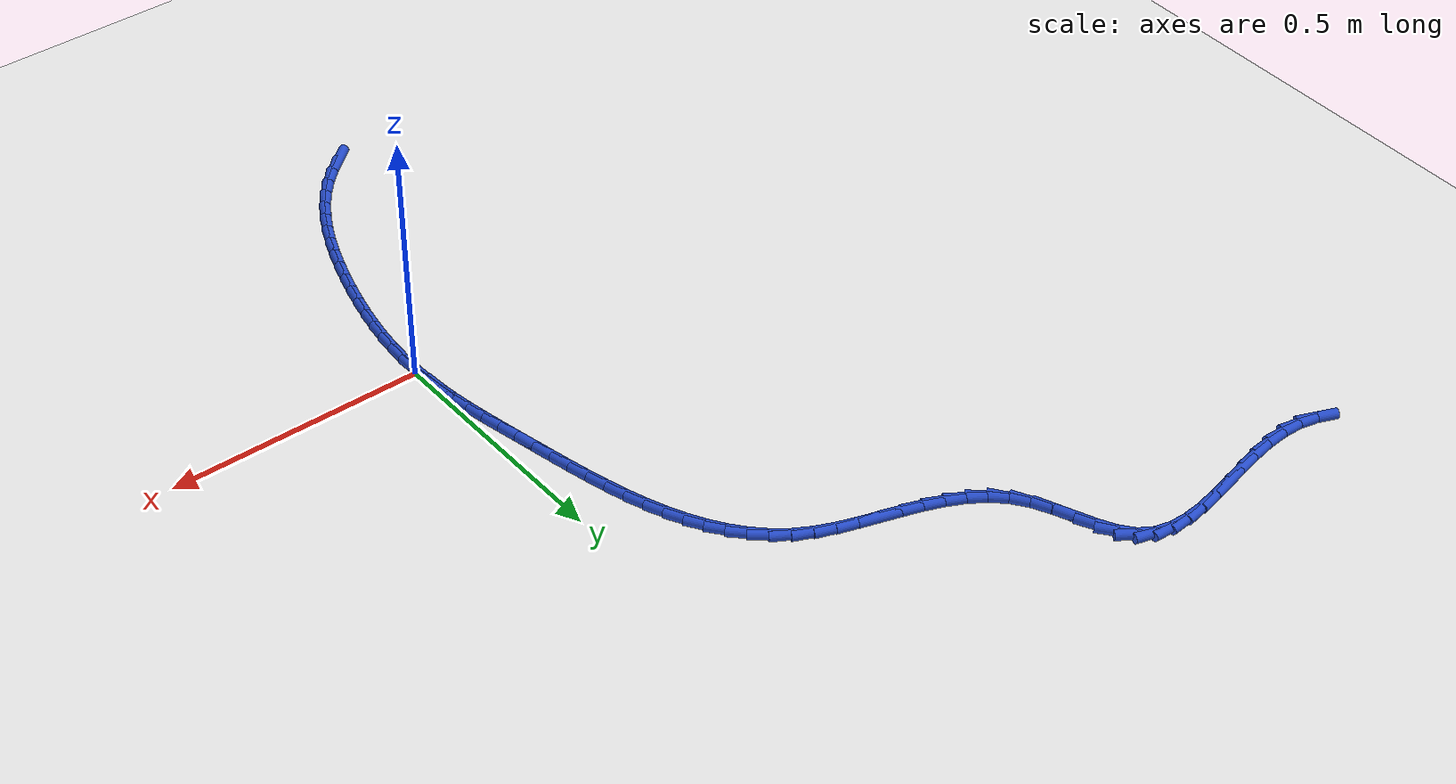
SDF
<sdf version="1.6">
 <world name="default">
  <model name="ground_plane">
   <static>1</static>
   <link name="link">
    <collision name="collision">
     <geometry><plane><normal>0 0 1</normal><size>100 100</size></plane></geometry>
     <surface><friction><ode><mu>100</mu><mu2>50</mu2></ode></friction></surface>
    </collision>
    <visual name="visual">
     <cast_shadows>0</cast_shadows>
     <geometry><plane><normal>0 0 1</normal><size>100 100</size></plane></geometry>
     <material>
      <script><uri>file://media/materials/scripts/gazebo.material</uri><name>Gazebo/WhiteGlow</name></script>
     </material>
    </visual>
   </link>
  </model>
  <model name="line">
   <link name="link_0">
    <pose>-1.734723475976807e-18 5.551115123125783e-17 0.01 0 1.57 -1.5294576837806575</pose>
    <collision name="collision">
     <geometry><cylinder><radius>0.01</radius><length>0.08</length></cylinder></geometry>
    </collision>
    <visual name="visual">
     <material>
      <script><name>Gazebo/Blue</name><uri>file://media/materials/scripts/gazebo.material</uri></script>
     </material>
     <geometry><cylinder><radius>0.01</radius><length>0.08</length></cylinder></geometry>
    </visual>
   </link>
   <link name="link_1">
    <pose>-0.0015377222670649787 0.03717698806352743 0.01 0 1.57 -1.484491954047659</pose>
    <collision name="collision">
     <geometry><cylinder><radius>0.01</radius><length>0.08</length></cylinder></geometry>
    </collision>
    <visual name="visual">
     <material>
      <script><name>Gazebo/Blue</name><uri>file://media/materials/scripts/gazebo.material</uri></script>
     </material>
     <geometry><cylinder><radius>0.01</radius><length>0.08</length></cylinder></geometry>
    </visual>
   </link>
   <link name="link_2">
    <pose>-0.004746334633091138 0.07426250198212336 0.01 0 1.57 -1.4463033006279675</pose>
    <collision name="collision">
     <geometry><cylinder><radius>0.01</radius><length>0.08</length></cylinder></geometry>
    </collision>
    <visual name="visual">
     <material>
      <script><name>Gazebo/Blue</name><uri>file://media/materials/scripts/gazebo.material</uri></script>
     </material>
     <geometry><cylinder><radius>0.01</radius><length>0.08</length></cylinder></geometry>
    </visual>
   </link>
   <link name="link_3">
    <pose>-0.009392195554723455 0.1113877524114802 0.01 0 1.57 -1.4152254693113606</pose>
    <collision name="collision">
     <geometry><cylinder><radius>0.01</radius><length>0.08</length></cylinder></geometry>
    </collision>
    <visual name="visual">
     <material>
      <script><name>Gazebo/Blue</name><uri>file://media/materials/scripts/gazebo.material</uri></script>
     </material>
     <geometry><cylinder><radius>0.01</radius><length>0.08</length></cylinder></geometry>
    </visual>
   </link>
   <link name="link_4">
    <pose>-0.015241663488606907 0.1486839500072904 0.01 0 1.57 -1.3913710444587293</pose>
    <collision name="collision">
     <geometry><cylinder><radius>0.01</radius><length>0.08</length></cylinder></geometry>
    </collision>
    <visual name="visual">
     <material>
      <script><name>Gazebo/Blue</name><uri>file://media/materials/scripts/gazebo.material</uri></script>
     </material>
     <geometry><cylinder><radius>0.01</radius><length>0.08</length></cylinder></geometry>
    </visual>
   </link>
   <link name="link_5">
    <pose>-0.022061096891386463 0.1862823054252463 0.01 0 1.57 -1.3746800725791712</pose>
    <collision name="collision">
     <geometry><cylinder><radius>0.01</radius><length>0.08</length></cylinder></geometry>
    </collision>
    <visual name="visual">
     <material>
      <script><name>Gazebo/Blue</name><uri>file://media/materials/scripts/gazebo.material</uri></script>
     </material>
     <geometry><cylinder><radius>0.01</radius><length>0.08</length></cylinder></geometry>
    </visual>
   </link>
   <link name="link_6">
    <pose>-0.029616854219707115 0.2243140293210403 0.01 0 1.57 -1.364965352702498</pose>
    <collision name="collision">
     <geometry><cylinder><radius>0.01</radius><length>0.08</length></cylinder></geometry>
    </collision>
    <visual name="visual">
     <material>
      <script><name>Gazebo/Blue</name><uri>file://media/materials/scripts/gazebo.material</uri></script>
     </material>
     <geometry><cylinder><radius>0.01</radius><length>0.08</length></cylinder></geometry>
    </visual>
   </link>
   <link name="link_7">
    <pose>-0.03767529393021382 0.26291033235036476 0.01 0 1.57 -1.3619333168266203</pose>
    <collision name="collision">
     <geometry><cylinder><radius>0.01</radius><length>0.08</length></cylinder></geometry>
    </collision>
    <visual name="visual">
     <material>
      <script><name>Gazebo/Blue</name><uri>file://media/materials/scripts/gazebo.material</uri></script>
     </material>
     <geometry><cylinder><radius>0.01</radius><length>0.08</length></cylinder></geometry>
    </visual>
   </link>
   <link name="link_8">
    <pose>-0.04600330266257185 0.3022019014968688 0.01 0 1.57 -1.3614533639277937</pose>
    <collision name="collision">
     <geometry><cylinder><radius>0.01</radius><length>0.08</length></cylinder></geometry>
    </collision>
    <visual name="visual">
     <material>
      <script><name>Gazebo/Blue</name><uri>file://media/materials/scripts/gazebo.material</uri></script>
     </material>
     <geometry><cylinder><radius>0.01</radius><length>0.08</length></cylinder></geometry>
    </visual>
   </link>
   <link name="link_9">
    <pose>-0.05449887943713009 0.3421894311362031 0.01 0 1.57 -1.3547385110409924</pose>
    <collision name="collision">
     <geometry><cylinder><radius>0.01</radius><length>0.08</length></cylinder></geometry>
    </collision>
    <visual name="visual">
     <material>
      <script><name>Gazebo/Blue</name><uri>file://media/materials/scripts/gazebo.material</uri></script>
     </material>
     <geometry><cylinder><radius>0.01</radius><length>0.08</length></cylinder></geometry>
    </visual>
   </link>
   <link name="link_10">
    <pose>-0.0633625610124835 0.3825736617463969 0.01 0 1.57 -1.3406506359792119</pose>
    <collision name="collision">
     <geometry><cylinder><radius>0.01</radius><length>0.08</length></cylinder></geometry>
    </collision>
    <visual name="visual">
     <material>
      <script><name>Gazebo/Blue</name><uri>file://media/materials/scripts/gazebo.material</uri></script>
     </material>
     <geometry><cylinder><radius>0.01</radius><length>0.08</length></cylinder></geometry>
    </visual>
   </link>
   <link name="link_11">
    <pose>-0.07283741697235752 0.42301316423434215 0.01 0 1.57 -1.3190139921230886</pose>
    <collision name="collision">
     <geometry><cylinder><radius>0.01</radius><length>0.08</length></cylinder></geometry>
    </collision>
    <visual name="visual">
     <material>
      <script><name>Gazebo/Blue</name><uri>file://media/materials/scripts/gazebo.material</uri></script>
     </material>
     <geometry><cylinder><radius>0.01</radius><length>0.08</length></cylinder></geometry>
    </visual>
   </link>
   <link name="link_12">
    <pose>-0.08316651690047758 0.4631665095069303 0.01 0 1.57 -1.2893805738168183</pose>
    <collision name="collision">
     <geometry><cylinder><radius>0.01</radius><length>0.08</length></cylinder></geometry>
    </collision>
    <visual name="visual">
     <material>
      <script><name>Gazebo/Blue</name><uri>file://media/materials/scripts/gazebo.material</uri></script>
     </material>
     <geometry><cylinder><radius>0.01</radius><length>0.08</length></cylinder></geometry>
    </visual>
   </link>
   <link name="link_13">
    <pose>-0.09459293038056912 0.5026922684710534 0.01 0 1.57 -1.2510417184283502</pose>
    <collision name="collision">
     <geometry><cylinder><radius>0.01</radius><length>0.08</length></cylinder></geometry>
    </collision>
    <visual name="visual">
     <material>
      <script><name>Gazebo/Blue</name><uri>file://media/materials/scripts/gazebo.material</uri></script>
     </material>
     <geometry><cylinder><radius>0.01</radius><length>0.08</length></cylinder></geometry>
    </visual>
   </link>
   <link name="link_14">
    <pose>-0.10735972699635767 0.5412490120336034 0.01 0 1.57 -1.2030437643708274</pose>
    <collision name="collision">
     <geometry><cylinder><radius>0.01</radius><length>0.08</length></cylinder></geometry>
    </collision>
    <visual name="visual">
     <material>
      <script><name>Gazebo/Blue</name><uri>file://media/materials/scripts/gazebo.material</uri></script>
     </material>
     <geometry><cylinder><radius>0.01</radius><length>0.08</length></cylinder></geometry>
    </visual>
   </link>
   <link name="link_15">
    <pose>-0.12170997633156855 0.5784953111014715 0.01 0 1.57 -1.1442273392983884</pose>
    <collision name="collision">
     <geometry><cylinder><radius>0.01</radius><length>0.08</length></cylinder></geometry>
    </collision>
    <visual name="visual">
     <material>
      <script><name>Gazebo/Blue</name><uri>file://media/materials/scripts/gazebo.material</uri></script>
     </material>
     <geometry><cylinder><radius>0.01</radius><length>0.08</length></cylinder></geometry>
    </visual>
   </link>
   <link name="link_16">
    <pose>-0.13788674796992728 0.6140897365815496 0.01 0 1.57 -1.0733213535850863</pose>
    <collision name="collision">
     <geometry><cylinder><radius>0.01</radius><length>0.08</length></cylinder></geometry>
    </collision>
    <visual name="visual">
     <material>
      <script><name>Gazebo/Blue</name><uri>file://media/materials/scripts/gazebo.material</uri></script>
     </material>
     <geometry><cylinder><radius>0.01</radius><length>0.08</length></cylinder></geometry>
    </visual>
   </link>
   <link name="link_17">
    <pose>-0.1561331114951593 0.6476908593807302 0.01 0 1.57 -0.989136097998022</pose>
    <collision name="collision">
     <geometry><cylinder><radius>0.01</radius><length>0.08</length></cylinder></geometry>
    </collision>
    <visual name="visual">
     <material>
      <script><name>Gazebo/Blue</name><uri>file://media/materials/scripts/gazebo.material</uri></script>
     </material>
     <geometry><cylinder><radius>0.01</radius><length>0.08</length></cylinder></geometry>
    </visual>
   </link>
   <link name="link_18">
    <pose>-0.17669213649099003 0.6789572504059043 0.01 0 1.57 -0.8909033180250826</pose>
    <collision name="collision">
     <geometry><cylinder><radius>0.01</radius><length>0.08</length></cylinder></geometry>
    </collision>
    <visual name="visual">
     <material>
      <script><name>Gazebo/Blue</name><uri>file://media/materials/scripts/gazebo.material</uri></script>
     </material>
     <geometry><cylinder><radius>0.01</radius><length>0.08</length></cylinder></geometry>
    </visual>
   </link>
   <link name="link_19">
    <pose>-0.19980689254114503 0.707547480563964 0.01 0 1.57 -0.7787767477814497</pose>
    <collision name="collision">
     <geometry><cylinder><radius>0.01</radius><length>0.08</length></cylinder></geometry>
    </collision>
    <visual name="visual">
     <material>
      <script><name>Gazebo/Blue</name><uri>file://media/materials/scripts/gazebo.material</uri></script>
     </material>
     <geometry><cylinder><radius>0.01</radius><length>0.08</length></cylinder></geometry>
    </visual>
   </link>
   <link name="link_20">
    <pose>-0.22572044922934956 0.7331201207618007 0.01 0 1.57 -0.6543971799876047</pose>
    <collision name="collision">
     <geometry><cylinder><radius>0.01</radius><length>0.08</length></cylinder></geometry>
    </collision>
    <visual name="visual">
     <material>
      <script><name>Gazebo/Blue</name><uri>file://media/materials/scripts/gazebo.material</uri></script>
     </material>
     <geometry><cylinder><radius>0.01</radius><length>0.08</length></cylinder></geometry>
    </visual>
   </link>
   <link name="link_21">
    <pose>-0.25467587613932924 0.7553337419063069 0.01 0 1.57 -0.5226803373683583</pose>
    <collision name="collision">
     <geometry><cylinder><radius>0.01</radius><length>0.08</length></cylinder></geometry>
    </collision>
    <visual name="visual">
     <material>
      <script><name>Gazebo/Blue</name><uri>file://media/materials/scripts/gazebo.material</uri></script>
     </material>
     <geometry><cylinder><radius>0.01</radius><length>0.08</length></cylinder></geometry>
    </visual>
   </link>
   <link name="link_22">
    <pose>-0.28688205316683263 0.7738885685946216 0.01 0 1.57 -0.41117091191270355</pose>
    <collision name="collision">
     <geometry><cylinder><radius>0.01</radius><length>0.08</length></cylinder></geometry>
    </collision>
    <visual name="visual">
     <material>
      <script><name>Gazebo/Blue</name><uri>file://media/materials/scripts/gazebo.material</uri></script>
     </material>
     <geometry><cylinder><radius>0.01</radius><length>0.08</length></cylinder></geometry>
    </visual>
   </link>
   <link name="link_23">
    <pose>-0.32197065468517044 0.789188041553179 0.01 0 1.57 -0.33763852767384994</pose>
    <collision name="collision">
     <geometry><cylinder><radius>0.01</radius><length>0.08</length></cylinder></geometry>
    </collision>
    <visual name="visual">
     <material>
      <script><name>Gazebo/Blue</name><uri>file://media/materials/scripts/gazebo.material</uri></script>
     </material>
     <geometry><cylinder><radius>0.01</radius><length>0.08</length></cylinder></geometry>
    </visual>
   </link>
   <link name="link_24">
    <pose>-0.3590928662386772 0.8022209865772467 0.01 0 1.57 -0.2982798082437698</pose>
    <collision name="collision">
     <geometry><cylinder><radius>0.01</radius><length>0.08</length></cylinder></geometry>
    </collision>
    <visual name="visual">
     <material>
      <script><name>Gazebo/Blue</name><uri>file://media/materials/scripts/gazebo.material</uri></script>
     </material>
     <geometry><cylinder><radius>0.01</radius><length>0.08</length></cylinder></geometry>
    </visual>
   </link>
   <link name="link_25">
    <pose>-0.39738523119453767 0.8139940681949837 0.01 0 1.57 -0.2900339981419908</pose>
    <collision name="collision">
     <geometry><cylinder><radius>0.01</radius><length>0.08</length></cylinder></geometry>
    </collision>
    <visual name="visual">
     <material>
      <script><name>Gazebo/Blue</name><uri>file://media/materials/scripts/gazebo.material</uri></script>
     </material>
     <geometry><cylinder><radius>0.01</radius><length>0.08</length></cylinder></geometry>
    </visual>
   </link>
   <link name="link_26">
    <pose>-0.43598429291993723 0.8255139509345507 0.01 0 1.57 -0.31208112287291845</pose>
    <collision name="collision">
     <geometry><cylinder><radius>0.01</radius><length>0.08</length></cylinder></geometry>
    </collision>
    <visual name="visual">
     <material>
      <script><name>Gazebo/Blue</name><uri>file://media/materials/scripts/gazebo.material</uri></script>
     </material>
     <geometry><cylinder><radius>0.01</radius><length>0.08</length></cylinder></geometry>
    </visual>
   </link>
   <link name="link_27">
    <pose>-0.4740265947820609 0.8377872993241077 0.01 0 1.57 -0.36593777058597304</pose>
    <collision name="collision">
     <geometry><cylinder><radius>0.01</radius><length>0.08</length></cylinder></geometry>
    </collision>
    <visual name="visual">
     <material>
      <script><name>Gazebo/Blue</name><uri>file://media/materials/scripts/gazebo.material</uri></script>
     </material>
     <geometry><cylinder><radius>0.01</radius><length>0.08</length></cylinder></geometry>
    </visual>
   </link>
   <link name="link_28">
    <pose>-0.5106486801480934 0.851820777891814 0.01 0 1.57 -0.455015503073997</pose>
    <collision name="collision">
     <geometry><cylinder><radius>0.01</radius><length>0.08</length></cylinder></geometry>
    </collision>
    <visual name="visual">
     <material>
      <script><name>Gazebo/Blue</name><uri>file://media/materials/scripts/gazebo.material</uri></script>
     </material>
     <geometry><cylinder><radius>0.01</radius><length>0.08</length></cylinder></geometry>
    </visual>
   </link>
   <link name="link_29">
    <pose>-0.5449870923852201 0.8686210511658301 0.01 0 1.57 -0.5830934907984354</pose>
    <collision name="collision">
     <geometry><cylinder><radius>0.01</radius><length>0.08</length></cylinder></geometry>
    </collision>
    <visual name="visual">
     <material>
      <script><name>Gazebo/Blue</name><uri>file://media/materials/scripts/gazebo.material</uri></script>
     </material>
     <geometry><cylinder><radius>0.01</radius><length>0.08</length></cylinder></geometry>
    </visual>
   </link>
   <link name="link_30">
    <pose>-0.5761783748606262 0.8891947836743164 0.01 0 1.57 -0.750638107358285</pose>
    <collision name="collision">
     <geometry><cylinder><radius>0.01</radius><length>0.08</length></cylinder></geometry>
    </collision>
    <visual name="visual">
     <material>
      <script><name>Gazebo/Blue</name><uri>file://media/materials/scripts/gazebo.material</uri></script>
     </material>
     <geometry><cylinder><radius>0.01</radius><length>0.08</length></cylinder></geometry>
    </visual>
   </link>
   <link name="link_31">
    <pose>-0.6033590709414962 0.9145486399454319 0.01 0 1.57 -0.9474467181236057</pose>
    <collision name="collision">
     <geometry><cylinder><radius>0.01</radius><length>0.08</length></cylinder></geometry>
    </collision>
    <visual name="visual">
     <material>
      <script><name>Gazebo/Blue</name><uri>file://media/materials/scripts/gazebo.material</uri></script>
     </material>
     <geometry><cylinder><radius>0.01</radius><length>0.08</length></cylinder></geometry>
    </visual>
   </link>
   <link name="link_32">
    <pose>-0.6257071221112285 0.9456317233077048 0.01 0 1.57 -1.1073831744566363</pose>
    <collision name="collision">
     <geometry><cylinder><radius>0.01</radius><length>0.08</length></cylinder></geometry>
    </collision>
    <visual name="visual">
     <material>
      <script><name>Gazebo/Blue</name><uri>file://media/materials/scripts/gazebo.material</uri></script>
     </material>
     <geometry><cylinder><radius>0.01</radius><length>0.08</length></cylinder></geometry>
    </visual>
   </link>
   <link name="link_33">
    <pose>-0.6436845645640886 0.9816076927564277 0.01 0 1.57 -1.1814205723311484</pose>
    <collision name="collision">
     <geometry><cylinder><radius>0.01</radius><length>0.08</length></cylinder></geometry>
    </collision>
    <visual name="visual">
     <material>
      <script><name>Gazebo/Blue</name><uri>file://media/materials/scripts/gazebo.material</uri></script>
     </material>
     <geometry><cylinder><radius>0.01</radius><length>0.08</length></cylinder></geometry>
    </visual>
   </link>
   <link name="link_34">
    <pose>-0.6592545127883546 1.0195530623815323 0.01 0 1.57 -1.179546488560856</pose>
    <collision name="collision">
     <geometry><cylinder><radius>0.01</radius><length>0.08</length></cylinder></geometry>
    </collision>
    <visual name="visual">
     <material>
      <script><name>Gazebo/Blue</name><uri>file://media/materials/scripts/gazebo.material</uri></script>
     </material>
     <geometry><cylinder><radius>0.01</radius><length>0.08</length></cylinder></geometry>
    </visual>
   </link>
   <link name="link_35">
    <pose>-0.6744652079903459 1.056425983495619 0.01 0 1.57 -1.0945216091758796</pose>
    <collision name="collision">
     <geometry><cylinder><radius>0.01</radius><length>0.08</length></cylinder></geometry>
    </collision>
    <visual name="visual">
     <material>
      <script><name>Gazebo/Blue</name><uri>file://media/materials/scripts/gazebo.material</uri></script>
     </material>
     <geometry><cylinder><radius>0.01</radius><length>0.08</length></cylinder></geometry>
    </visual>
   </link>
   <link name="link_36">
    <pose>-0.6913648913763834 1.0891846074112874 0.01 0 1.57 -0.892387288345922</pose>
    <collision name="collision">
     <geometry><cylinder><radius>0.01</radius><length>0.08</length></cylinder></geometry>
    </collision>
    <visual name="visual">
     <material>
      <script><name>Gazebo/Blue</name><uri>file://media/materials/scripts/gazebo.material</uri></script>
     </material>
     <geometry><cylinder><radius>0.01</radius><length>0.08</length></cylinder></geometry>
    </visual>
   </link>
   <link name="link_37">
    <pose>-0.7120016040296608 1.1147874079938682 0.01 0 1.57 -0.5641040190735358</pose>
    <collision name="collision">
     <geometry><cylinder><radius>0.01</radius><length>0.08</length></cylinder></geometry>
    </collision>
    <visual name="visual">
     <material>
      <script><name>Gazebo/Blue</name><uri>file://media/materials/scripts/gazebo.material</uri></script>
     </material>
     <geometry><cylinder><radius>0.01</radius><length>0.08</length></cylinder></geometry>
    </visual>
   </link>
   <link name="link_38">
    <pose>-0.7378392260667642 1.131134393044629 0.01 0 1.57 -0.2554464483704133</pose>
    <collision name="collision">
     <geometry><cylinder><radius>0.01</radius><length>0.08</length></cylinder></geometry>
    </collision>
    <visual name="visual">
     <material>
      <script><name>Gazebo/Blue</name><uri>file://media/materials/scripts/gazebo.material</uri></script>
     </material>
     <geometry><cylinder><radius>0.01</radius><length>0.08</length></cylinder></geometry>
    </visual>
   </link>
   <link name="link_39">
    <pose>-0.768474566804585 1.1391348616718489 0.01 0 1.57 -0.033549782701388635</pose>
    <collision name="collision">
     <geometry><cylinder><radius>0.01</radius><length>0.08</length></cylinder></geometry>
    </collision>
    <visual name="visual">
     <material>
      <script><name>Gazebo/Blue</name><uri>file://media/materials/scripts/gazebo.material</uri></script>
     </material>
     <geometry><cylinder><radius>0.01</radius><length>0.08</length></cylinder></geometry>
    </visual>
   </link>
   <link name="link_40">
    <pose>-0.8031322105870096 1.1402980545477268 0.01 0 1.57 0.10943815288981638</pose>
    <collision name="collision">
     <geometry><cylinder><radius>0.01</radius><length>0.08</length></cylinder></geometry>
    </collision>
    <visual name="visual">
     <material>
      <script><name>Gazebo/Blue</name><uri>file://media/materials/scripts/gazebo.material</uri></script>
     </material>
     <geometry><cylinder><radius>0.01</radius><length>0.08</length></cylinder></geometry>
    </visual>
   </link>
   <link name="link_41">
    <pose>-0.8410367417579238 1.1361332123444616 0.01 0 1.57 0.19521405236376452</pose>
    <collision name="collision">
     <geometry><cylinder><radius>0.01</radius><length>0.08</length></cylinder></geometry>
    </collision>
    <visual name="visual">
     <material>
      <script><name>Gazebo/Blue</name><uri>file://media/materials/scripts/gazebo.material</uri></script>
     </material>
     <geometry><cylinder><radius>0.01</radius><length>0.08</length></cylinder></geometry>
    </visual>
   </link>
   <link name="link_42">
    <pose>-0.8814127446612147 1.128149575734253 0.01 0 1.57 0.23994292107422835</pose>
    <collision name="collision">
     <geometry><cylinder><radius>0.01</radius><length>0.08</length></cylinder></geometry>
    </collision>
    <visual name="visual">
     <material>
      <script><name>Gazebo/Blue</name><uri>file://media/materials/scripts/gazebo.material</uri></script>
     </material>
     <geometry><cylinder><radius>0.01</radius><length>0.08</length></cylinder></geometry>
    </visual>
   </link>
   <link name="link_43">
    <pose>-0.9234848036407683 1.117856385389299 0.01 0 1.57 0.25252403384447536</pose>
    <collision name="collision">
     <geometry><cylinder><radius>0.01</radius><length>0.08</length></cylinder></geometry>
    </collision>
    <visual name="visual">
     <material>
      <script><name>Gazebo/Blue</name><uri>file://media/materials/scripts/gazebo.material</uri></script>
     </material>
     <geometry><cylinder><radius>0.01</radius><length>0.08</length></cylinder></geometry>
    </visual>
   </link>
   <link name="link_44">
    <pose>-0.9664775030404708 1.106762881981799 0.01 0 1.57 0.23623474272362704</pose>
    <collision name="collision">
     <geometry><cylinder><radius>0.01</radius><length>0.08</length></cylinder></geometry>
    </collision>
    <visual name="visual">
     <material>
      <script><name>Gazebo/Blue</name><uri>file://media/materials/scripts/gazebo.material</uri></script>
     </material>
     <geometry><cylinder><radius>0.01</radius><length>0.08</length></cylinder></geometry>
    </visual>
   </link>
   <link name="link_45">
    <pose>-1.0096154272042088 1.096378306183952 0.01 0 1.57 0.1898032400876308</pose>
    <collision name="collision">
     <geometry><cylinder><radius>0.01</radius><length>0.08</length></cylinder></geometry>
    </collision>
    <visual name="visual">
     <material>
      <script><name>Gazebo/Blue</name><uri>file://media/materials/scripts/gazebo.material</uri></script>
     </material>
     <geometry><cylinder><radius>0.01</radius><length>0.08</length></cylinder></geometry>
    </visual>
   </link>
   <link name="link_46">
    <pose>-1.0521231604758687 1.0882118986679565 0.01 0 1.57 0.10758226188313813</pose>
    <collision name="collision">
     <geometry><cylinder><radius>0.01</radius><length>0.08</length></cylinder></geometry>
    </collision>
    <visual name="visual">
     <material>
      <script><name>Gazebo/Blue</name><uri>file://media/materials/scripts/gazebo.material</uri></script>
     </material>
     <geometry><cylinder><radius>0.01</radius><length>0.08</length></cylinder></geometry>
    </visual>
   </link>
   <link name="link_47">
    <pose>-1.0932252871993366 1.0837729001060121 0.01 0 1.57 -0.0204911815716287</pose>
    <collision name="collision">
     <geometry><cylinder><radius>0.01</radius><length>0.08</length></cylinder></geometry>
    </collision>
    <visual name="visual">
     <material>
      <script><name>Gazebo/Blue</name><uri>file://media/materials/scripts/gazebo.material</uri></script>
     </material>
     <geometry><cylinder><radius>0.01</radius><length>0.08</length></cylinder></geometry>
    </visual>
   </link>
   <link name="link_48">
    <pose>-1.132146391718499 1.0845705511703168 0.01 0 1.57 -0.19960332465317576</pose>
    <collision name="collision">
     <geometry><cylinder><radius>0.01</radius><length>0.08</length></cylinder></geometry>
    </collision>
    <visual name="visual">
     <material>
      <script><name>Gazebo/Blue</name><uri>file://media/materials/scripts/gazebo.material</uri></script>
     </material>
     <geometry><cylinder><radius>0.01</radius><length>0.08</length></cylinder></geometry>
    </visual>
   </link>
   <link name="link_49">
    <pose>-1.1682404359963554 1.0918722714173559 0.01 0 1.57 -0.37834428846003815</pose>
    <collision name="collision">
     <geometry><cylinder><radius>0.01</radius><length>0.08</length></cylinder></geometry>
    </collision>
    <visual name="visual">
     <material>
      <script><name>Gazebo/Blue</name><uri>file://media/materials/scripts/gazebo.material</uri></script>
     </material>
     <geometry><cylinder><radius>0.01</radius><length>0.08</length></cylinder></geometry>
    </visual>
   </link>
   <link name="link_192">
    <pose>-0.23633565026319758 -0.6234597395899377 0.01 0 1.57 0.7126300657001285</pose>
    <collision name="collision">
     <geometry><cylinder><radius>0.01</radius><length>0.08</length></cylinder></geometry>
    </collision>
    <visual name="visual">
     <material>
      <script><name>Gazebo/Blue</name><uri>file://media/materials/scripts/gazebo.material</uri></script>
     </material>
     <geometry><cylinder><radius>0.01</radius><length>0.08</length></cylinder></geometry>
    </visual>
   </link>
   <link name="link_193">
    <pose>-0.20865743760575747 -0.5995426592435428 0.01 0 1.57 0.7881135440461243</pose>
    <collision name="collision">
     <geometry><cylinder><radius>0.01</radius><length>0.08</length></cylinder></geometry>
    </collision>
    <visual name="visual">
     <material>
      <script><name>Gazebo/Blue</name><uri>file://media/materials/scripts/gazebo.material</uri></script>
     </material>
     <geometry><cylinder><radius>0.01</radius><length>0.08</length></cylinder></geometry>
    </visual>
   </link>
   <link name="link_194">
    <pose>-0.18289709286479336 -0.5736420349622295 0.01 0 1.57 0.8740582635585823</pose>
    <collision name="collision">
     <geometry><cylinder><radius>0.01</radius><length>0.08</length></cylinder></geometry>
    </collision>
    <visual name="visual">
     <material>
      <script><name>Gazebo/Blue</name><uri>file://media/materials/scripts/gazebo.material</uri></script>
     </material>
     <geometry><cylinder><radius>0.01</radius><length>0.08</length></cylinder></geometry>
    </visual>
   </link>
   <link name="link_195">
    <pose>-0.15930720373334634 -0.5454489989936442 0.01 0 1.57 0.9580026923453968</pose>
    <collision name="collision">
     <geometry><cylinder><radius>0.01</radius><length>0.08</length></cylinder></geometry>
    </collision>
    <visual name="visual">
     <material>
      <script><name>Gazebo/Blue</name><uri>file://media/materials/scripts/gazebo.material</uri></script>
     </material>
     <geometry><cylinder><radius>0.01</radius><length>0.08</length></cylinder></geometry>
    </visual>
   </link>
   <link name="link_196">
    <pose>-0.1379029953269159 -0.5150057391834878 0.01 0 1.57 1.0318239465548484</pose>
    <collision name="collision">
     <geometry><cylinder><radius>0.01</radius><length>0.08</length></cylinder></geometry>
    </collision>
    <visual name="visual">
     <material>
      <script><name>Gazebo/Blue</name><uri>file://media/materials/scripts/gazebo.material</uri></script>
     </material>
     <geometry><cylinder><radius>0.01</radius><length>0.08</length></cylinder></geometry>
    </visual>
   </link>
   <link name="link_197">
    <pose>-0.11852814956635256 -0.4826081531214913 0.01 0 1.57 1.0959251217136783</pose>
    <collision name="collision">
     <geometry><cylinder><radius>0.01</radius><length>0.08</length></cylinder></geometry>
    </collision>
    <visual name="visual">
     <material>
      <script><name>Gazebo/Blue</name><uri>file://media/materials/scripts/gazebo.material</uri></script>
     </material>
     <geometry><cylinder><radius>0.01</radius><length>0.08</length></cylinder></geometry>
    </visual>
   </link>
   <link name="link_198">
    <pose>-0.10102253577926898 -0.44855777716408707 0.01 0 1.57 1.1510997789625075</pose>
    <collision name="collision">
     <geometry><cylinder><radius>0.01</radius><length>0.08</length></cylinder></geometry>
    </collision>
    <visual name="visual">
     <material>
      <script><name>Gazebo/Blue</name><uri>file://media/materials/scripts/gazebo.material</uri></script>
     </material>
     <geometry><cylinder><radius>0.01</radius><length>0.08</length></cylinder></geometry>
    </visual>
   </link>
   <link name="link_199">
    <pose>-0.0852260232932782 -0.41315614766770725 0.01 0 1.57 1.1981899975040733</pose>
    <collision name="collision">
     <geometry><cylinder><radius>0.01</radius><length>0.08</length></cylinder></geometry>
    </collision>
    <visual name="visual">
     <material>
      <script><name>Gazebo/Blue</name><uri>file://media/materials/scripts/gazebo.material</uri></script>
     </material>
     <geometry><cylinder><radius>0.01</radius><length>0.08</length></cylinder></geometry>
    </visual>
   </link>
   <link name="link_200">
    <pose>-0.0709784814359935 -0.3767048009887848 0.01 0 1.57 1.23798557554009</pose>
    <collision name="collision">
     <geometry><cylinder><radius>0.01</radius><length>0.08</length></cylinder></geometry>
    </collision>
    <visual name="visual">
     <material>
      <script><name>Gazebo/Blue</name><uri>file://media/materials/scripts/gazebo.material</uri></script>
     </material>
     <geometry><cylinder><radius>0.01</radius><length>0.08</length></cylinder></geometry>
    </visual>
   </link>
   <link name="link_201">
    <pose>-0.05811977953502806 -0.3395052734837522 0.01 0 1.57 1.2711680930134026</pose>
    <collision name="collision">
     <geometry><cylinder><radius>0.01</radius><length>0.08</length></cylinder></geometry>
    </collision>
    <visual name="visual">
     <material>
      <script><name>Gazebo/Blue</name><uri>file://media/materials/scripts/gazebo.material</uri></script>
     </material>
     <geometry><cylinder><radius>0.01</radius><length>0.08</length></cylinder></geometry>
    </visual>
   </link>
   <link name="link_202">
    <pose>-0.046489786917994755 -0.30185910150904116 0.01 0 1.57 1.2990352851752307</pose>
    <collision name="collision">
     <geometry><cylinder><radius>0.01</radius><length>0.08</length></cylinder></geometry>
    </collision>
    <visual name="visual">
     <material>
      <script><name>Gazebo/Blue</name><uri>file://media/materials/scripts/gazebo.material</uri></script>
     </material>
     <geometry><cylinder><radius>0.01</radius><length>0.08</length></cylinder></geometry>
    </visual>
   </link>
   <link name="link_203">
    <pose>-0.035952551387107484 -0.264044470982454 0.01 0 1.57 1.3272919592255756</pose>
    <collision name="collision">
     <geometry><cylinder><radius>0.01</radius><length>0.08</length></cylinder></geometry>
    </collision>
    <visual name="visual">
     <material>
      <script><name>Gazebo/Blue</name><uri>file://media/materials/scripts/gazebo.material</uri></script>
     </material>
     <geometry><cylinder><radius>0.01</radius><length>0.08</length></cylinder></geometry>
    </visual>
   </link>
   <link name="link_204">
    <pose>-0.026544103230984366 -0.22617347518935407 0.01 0 1.57 1.3584314422249506</pose>
    <collision name="collision">
     <geometry><cylinder><radius>0.01</radius><length>0.08</length></cylinder></geometry>
    </collision>
    <visual name="visual">
     <material>
      <script><name>Gazebo/Blue</name><uri>file://media/materials/scripts/gazebo.material</uri></script>
     </material>
     <geometry><cylinder><radius>0.01</radius><length>0.08</length></cylinder></geometry>
    </visual>
   </link>
   <link name="link_205">
    <pose>-0.01837500569852563 -0.18828622697200842 0.01 0 1.57 1.3926158645756663</pose>
    <collision name="collision">
     <geometry><cylinder><radius>0.01</radius><length>0.08</length></cylinder></geometry>
    </collision>
    <visual name="visual">
     <material>
      <script><name>Gazebo/Blue</name><uri>file://media/materials/scripts/gazebo.material</uri></script>
     </material>
     <geometry><cylinder><radius>0.01</radius><length>0.08</length></cylinder></geometry>
    </visual>
   </link>
   <link name="link_206">
    <pose>-0.011556122292839914 -0.1504225492012286 0.01 0 1.57 1.4299944126817346</pose>
    <collision name="collision">
     <geometry><cylinder><radius>0.01</radius><length>0.08</length></cylinder></geometry>
    </collision>
    <visual name="visual">
     <material>
      <script><name>Gazebo/Blue</name><uri>file://media/materials/scripts/gazebo.material</uri></script>
     </material>
     <geometry><cylinder><radius>0.01</radius><length>0.08</length></cylinder></geometry>
    </visual>
   </link>
   <link name="link_207">
    <pose>-0.006198316517035862 -0.11262226474782623 0.01 0 1.57 1.4707033135031833</pose>
    <collision name="collision">
     <geometry><cylinder><radius>0.01</radius><length>0.08</length></cylinder></geometry>
    </collision>
    <visual name="visual">
     <material>
      <script><name>Gazebo/Blue</name><uri>file://media/materials/scripts/gazebo.material</uri></script>
     </material>
     <geometry><cylinder><radius>0.01</radius><length>0.08</length></cylinder></geometry>
    </visual>
   </link>
   <link name="link_208">
    <pose>-0.002412451874222097 -0.0749251964826129 0.01 0 1.57 1.5148538431768361</pose>
    <collision name="collision">
     <geometry><cylinder><radius>0.01</radius><length>0.08</length></cylinder></geometry>
    </collision>
    <visual name="visual">
     <material>
      <script><name>Gazebo/Blue</name><uri>file://media/materials/scripts/gazebo.material</uri></script>
     </material>
     <geometry><cylinder><radius>0.01</radius><length>0.08</length></cylinder></geometry>
    </visual>
   </link>
   <link name="link_209">
    <pose>-0.0003093918675072336 -0.037371167276399345 0.01 0 1.57 1.5625176236724883</pose>
    <collision name="collision">
     <geometry><cylinder><radius>0.01</radius><length>0.08</length></cylinder></geometry>
    </collision>
    <visual name="visual">
     <material>
      <script><name>Gazebo/Blue</name><uri>file://media/materials/scripts/gazebo.material</uri></script>
     </material>
     <geometry><cylinder><radius>0.01</radius><length>0.08</length></cylinder></geometry>
    </visual>
   </link>
   <link name="link_210">
    <pose>1.5612511283791264e-17 2.1510571102112408e-16 0.01 0 1.57 -1.527883120780283</pose>
    <collision name="collision">
     <geometry><cylinder><radius>0.01</radius><length>0.08</length></cylinder></geometry>
    </collision>
    <visual name="visual">
     <material>
      <script><name>Gazebo/Blue</name><uri>file://media/materials/scripts/gazebo.material</uri></script>
     </material>
     <geometry><cylinder><radius>0.01</radius><length>0.08</length></cylinder></geometry>
    </visual>
   </link>
   <link name="link_211">
    <pose>-0.0015951397748089034 0.03714848247577681 0.01 0 1.57 -1.4732234776329394</pose>
    <collision name="collision">
     <geometry><cylinder><radius>0.01</radius><length>0.08</length></cylinder></geometry>
    </collision>
    <visual name="visual">
     <material>
      <script><name>Gazebo/Blue</name><uri>file://media/materials/scripts/gazebo.material</uri></script>
     </material>
     <geometry><cylinder><radius>0.01</radius><length>0.08</length></cylinder></geometry>
    </visual>
   </link>
   <link name="link_212">
    <pose>-0.005205674695042864 0.07403445728011965 0.01 0 1.57 -1.5005976498532216</pose>
    <collision name="collision">
     <geometry><cylinder><radius>0.01</radius><length>0.08</length></cylinder></geometry>
    </collision>
    <visual name="visual">
     <material>
      <script><name>Gazebo/Blue</name><uri>file://media/materials/scripts/gazebo.material</uri></script>
     </material>
     <geometry><cylinder><radius>0.01</radius><length>0.08</length></cylinder></geometry>
    </visual>
   </link>
  </model>
 </world>
</sdf>
